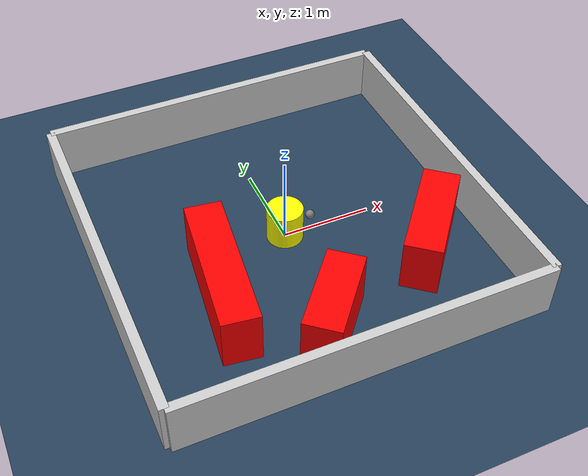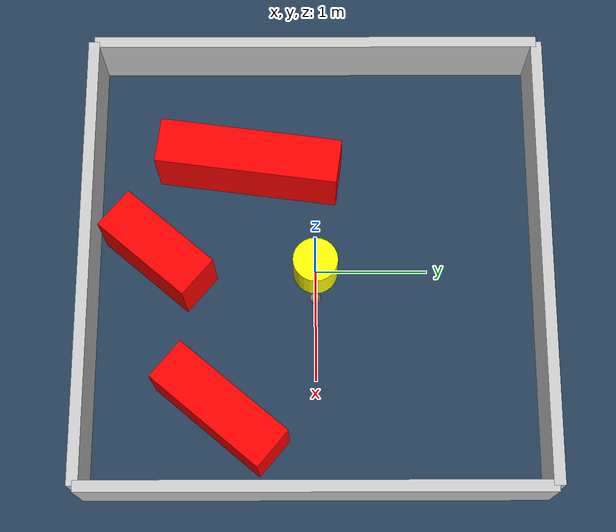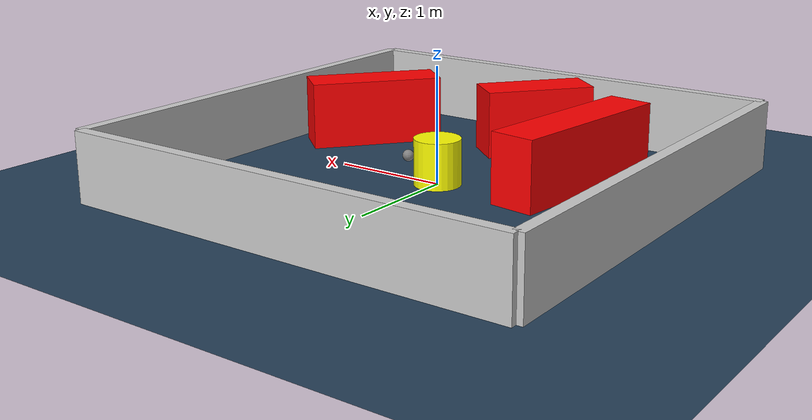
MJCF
<?xml version="1.0" ?>
<mujoco model="generated_environment">
  <option timestep="0.01" integrator="RK4" cone="elliptic"/>
  <default>
    <geom density="1"/>
  </default>
  <asset>
    <texture builtin="gradient" height="3072" rgb1="0.3 0.5 0.7" rgb2="0 0 0" type="skybox" width="512"/>
    <texture builtin="checker" height="300" mark="edge" markrgb="0.8 0.8 0.8" name="groundplane" rgb1="0.2 0.3 0.4" rgb2="0.1 0.2 0.3" type="2d" width="300"/>
    <material name="groundplane" reflectance="0.2" texrepeat="5 5" texture="groundplane" texuniform="true"/>
    <material name="robot" rgba="0.0 1.0 0.0 1"/>
  </asset>
  <worldbody>
    <light dir="0 0 -1" directional="true" pos="0 0 1.5"/>
    <geom condim="4" friction="1.0 0.005 0.001" material="groundplane" name="floor" size="0 0 0.05" type="plane"/>
    <body name="walls">
      <geom name="wall_1" condim="4" pos="-2.0 0.0 0.3" rgba="0.800000011920929 0.800000011920929 0.800000011920929 1.0" size="0.05 2.0 0.3" type="box"/>
      <geom name="wall_2" condim="4" pos="2.0 0.0 0.3" rgba="0.800000011920929 0.800000011920929 0.800000011920929 1.0" size="0.05 2.0 0.3" type="box"/>
      <geom name="wall_3" condim="4" pos="0.0 -2.0 0.3" rgba="0.800000011920929 0.800000011920929 0.800000011920929 1.0" size="2.0 0.05 0.3" type="box"/>
      <geom name="wall_4" condim="4" pos="0.0 2.0 0.3" rgba="0.800000011920929 0.800000011920929 0.800000011920929 1.0" size="2.0 0.05 0.3" type="box"/>
    </body>
    <body name="robot">
      <joint name="joint_x" type="slide" pos="0 0 0" axis="1 0 0"/>
      <joint name="joint_y" type="slide" pos="0 0 0" axis="0 1 0"/>
      <geom name="robot" type="sphere" pos="0.3 0.0 0.2" size="0.05" mass="5." friction="1.0 0.005 0.0001" condim="4" rgba="0.5 0.5 0.5 1.0"/>
      <site name="sensor_ball"/>
    </body>
    <body name="obstacle_movable_1">
      <geom name="obstacle_movable_1" condim="4" pos="0.0 0.0 0.2" euler="0 0 0.0" friction="1.0 0.005 0.001" rgba="1.0 1.0 0.0 1.0" size="0.2 0.2 0.0" type="cylinder" mass="0.1"/>
      <joint type="free"/>
    </body>
    <body name="obstacle_2_static">
      <geom name="obstacle_2_static" condim="4" pos="-0.9476826446960732 -0.5916385389894965 0.3" euler="0 0 262.49601867790085" friction="1.0 0.005 0.001" rgba="1 0 0 1" size="0.8094719247233026 0.2 0.3" type="box"/>
    </body>
    <body name="obstacle_3_static">
      <geom name="obstacle_3_static" condim="4" pos="-0.09952482640621607 -1.388131351571542 0.3" euler="0 0 229.89545023834214" friction="1.0 0.005 0.001" rgba="1 0 0 1" size="0.4915652740540345 0.2 0.3" type="box"/>
    </body>
    <body name="obstacle_4_static">
      <geom name="obstacle_4_static" condim="4" pos="1.3124281058159462 -0.8142227267317304 0.3" euler="0 0 230.2190963163457" friction="1.0 0.005 0.001" rgba="1 0 0 1" size="0.5984758299325976 0.2 0.3" type="box"/>
    </body>
  </worldbody>
  <actuator>
    <motor name="actuator_x" joint="joint_x" gear="1" ctrlrange="-1 1"/>
    <motor name="actuator_y" joint="joint_y" gear="1" ctrlrange="-1 1"/>
  </actuator>
</mujoco>
